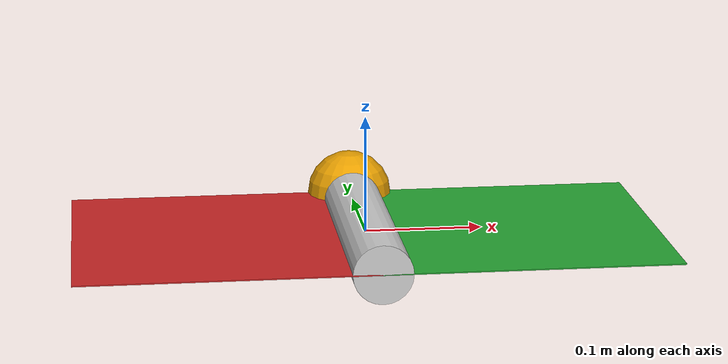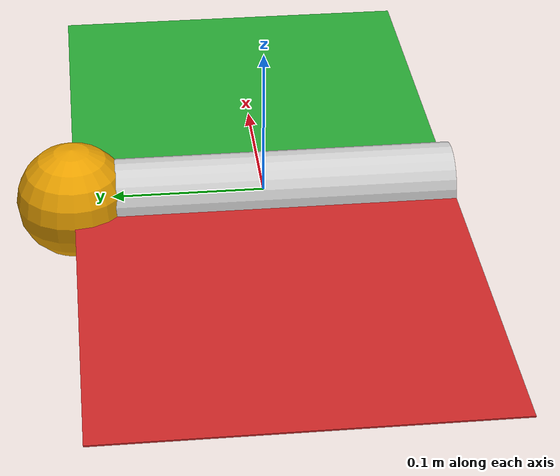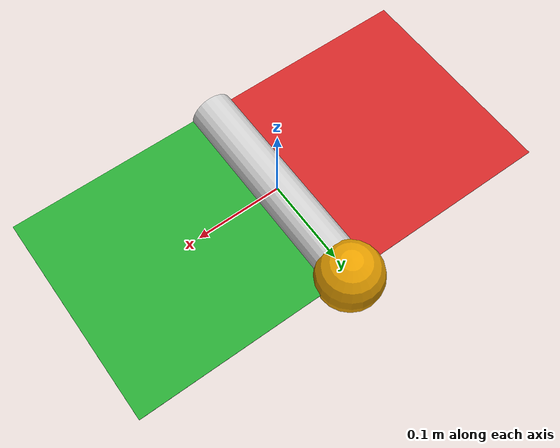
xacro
<?xml version="1.0" encoding="UTF-8"?>
<robot xmlns:xacro="http://wiki.ros.org/xacro" name="metafly">

  <!-- Use this if parameters are set from the launch file, otherwise delete -->
  <xacro:arg name="prefix" default="" />

  <xacro:include filename="$(find metafly_description)/urdf/common/inertials.xacro" />
  <xacro:include filename="$(find metafly_description)/urdf/common/materials.xacro" />
  <xacro:include filename="$(find metafly_description)/urdf/metafly/metafly_macro.xacro" />

  <!-- Load robot's macro with parameters -->
  <!-- set prefix if multiple robots are used -->
  <xacro:metafly prefix="$(arg prefix)"/>

</robot>

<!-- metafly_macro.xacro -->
<robot xmlns:xacro="http://wiki.ros.org/xacro">

  <xacro:macro name="metafly" params="prefix">

  <xacro:property name="body_length" value="0.25" />
  <xacro:property name="body_radius" value="0.025" />
  <xacro:property name="wing_thickness" value="0.001" />
  <xacro:property name="wing_length" value="${body_length}" />
  <xacro:property name="wing_width" value="0.25" />
  <xacro:property name="wing_thickness" value="0.001" />

    <!-- LINKS -->
    <!-- base link -->
    <link name="${prefix}base_link">

      <!-- body -->
      <visual>
        <origin xyz="0 0 0" rpy="${radians(90)} 0 0" />
        <geometry>
          <cylinder length="${body_length}" radius="${body_radius}" />
        </geometry>
        <material name="light_grey"/>
      </visual>

      <!-- head -->
      <visual>
        <origin xyz="0 ${body_length/2} 0" rpy="0 0 0" />
        <geometry>
          <sphere radius="${body_radius*1.5}"/>
        </geometry>
      </visual>

    </link>

    <!-- wing 1 -->
    <link name="${prefix}wing1">
      <visual>
        <origin xyz="${-wing_width/2} 0 0" rpy="0 0 0" />
        <geometry>
          <box size="${wing_width} ${wing_length} ${wing_thickness}" />
        </geometry>
        <material name="red"/>
      </visual>
    </link>

  <!-- wing 2 -->
    <link name="${prefix}wing2">
      <visual>
        <origin xyz="${wing_width/2} 0 0" rpy="0 0 0" />
        <geometry>
          <box size="${wing_width} ${wing_length} ${wing_thickness}" />
        </geometry>
        <material name="green"/>
      </visual>
    </link>

    <!-- JOINTS -->

    <!-- joint 1 -->
    <joint name="${prefix}joint1" type="revolute">
      <origin xyz="0 0 0" rpy="0 0 0" />
      <parent link="${prefix}base_link" />
      <child link="${prefix}wing1" />
      <axis xyz="0 1 0" />
      <limit effort="0" lower="${radians(-90)}" upper="${radians(90)}" velocity="0" />
    </joint>
    <!-- joint 2 -->
    <joint name="${prefix}joint2" type="revolute">
      <origin xyz="0 0 0" rpy="0 0 0" />
      <parent link="${prefix}base_link" />
      <child link="${prefix}wing2" />
      <axis xyz="0 1 0" />
      <limit effort="0" lower="${radians(-90)}" upper="${radians(90)}" velocity="0" />
    </joint>

    <!-- END JOINTS -->

  </xacro:macro>
</robot>
